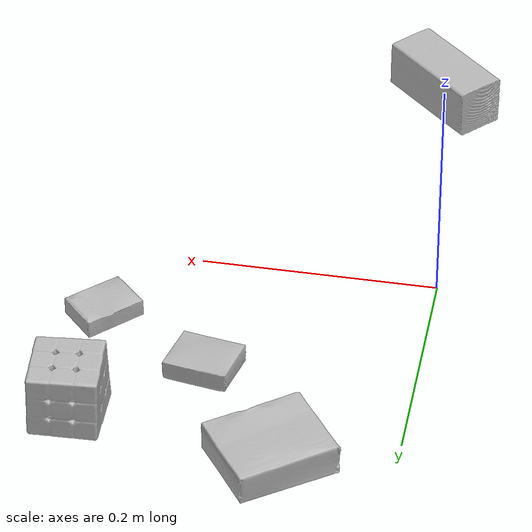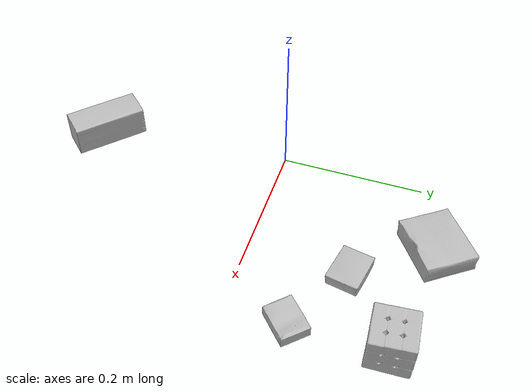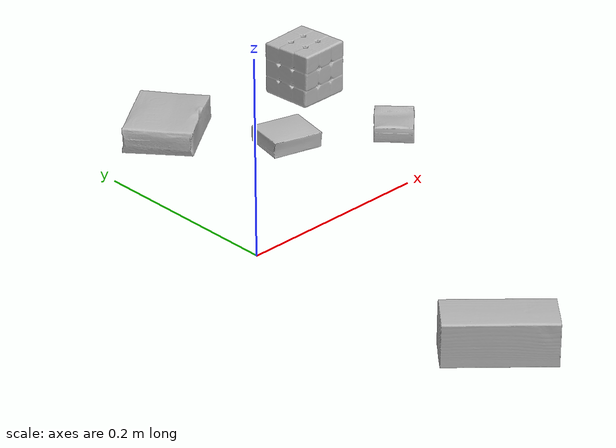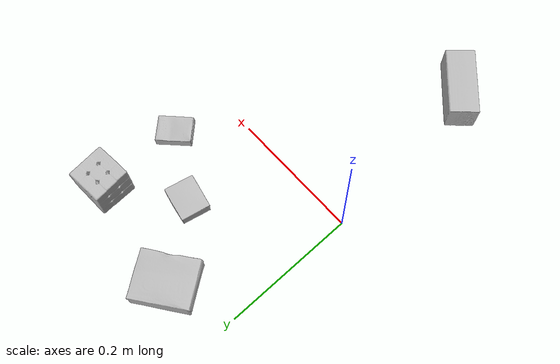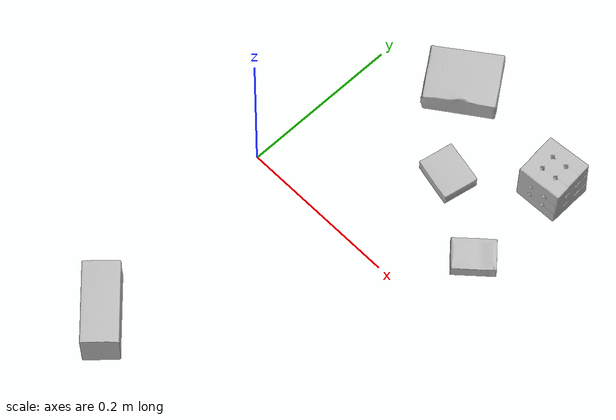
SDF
<sdf version="1.4">
  <world name="default">
    <light name="light1" type="point">
      <pose>0 0 1 0 0 0</pose>
      <diffuse>3 3 3 1</diffuse>
      <specular>3 3 3 1</specular>
    </light>
    <light name="light2" type="point">
      <pose>0 0.5 2 0 0 0</pose>
      <diffuse>1 1 1 1</diffuse>
      <specular>1 1 1 1</specular>
    </light>
    <light name="light3" type="point">
      <pose>0 0.5 2 0 0 0</pose>
      <diffuse>3 3 3 1</diffuse>
      <specular>3 3 3 1</specular>
    </light>
    <scene>
      <ambient>0.7 0.7 0.7</ambient>
    </scene>
    <model name="box1">
      <link name="link_box1">
        <collision name="default">
          <geometry>
            <mesh>
              <uri>model://rubiks_cube/collision_meshes/collision.obj</uri>
              <scale>1.0 1.0 1.0</scale>
            </mesh>
          </geometry>
          <surface>
            <friction>
              <ode>
                <mu>0.5</mu>
                <mu2>0.5</mu2>
              </ode>
            </friction>
          <contact>
        <ode>
            <max_vel>0</max_vel>
            <min_depth>0.0001</min_depth>
            <kp>1e8</kp>
        </ode>
    </contact></surface>
        </collision>
        <visual name="default">
          <geometry>
            <mesh>
              <uri>model://rubiks_cube/visual_meshes/visual.dae</uri>
              <scale>1.0 1.0 1.0</scale>
            </mesh>
          </geometry>
        </visual>
        <inertial>
          <mass>0.16542086005210876</mass>
          <pose>2.6721041649580002e-05 5.256967051536776e-05 -7.264316536748083e-06 -0.054673137900176624 -0.09813866632394339 -0.03445580911338559</pose>
          <inertia>
            <ixx>9.140613e-05</ixx>
            <iyy>9.097988e-05</iyy>
            <izz>9.216359e-05</izz>
            <ixy>0</ixy>
            <ixz>0</ixz>
            <iyz>0</iyz>
          </inertia>
        </inertial>
      </link>
      <pose>0.2661793529987335 0.21118472516536713 0.028678985312581062 -1.5626916461300923e-06 3.6947098518503637e-07 1.645792349169931</pose>
    </model>
    <model name="box2">
      <link name="link_box2">
        <collision name="default">
          <geometry>
            <mesh>
              <uri>model://cracker_box/collision_meshes/collision.obj</uri>
              <scale>0.25 0.25 0.25</scale>
            </mesh>
          </geometry>
          <surface>
            <friction>
              <ode>
                <mu>0.5</mu>
                <mu2>0.5</mu2>
              </ode>
            </friction>
          <contact>
        <ode>
            <max_vel>0</max_vel>
            <min_depth>0.0001</min_depth>
            <kp>1e8</kp>
        </ode>
    </contact></surface>
        </collision>
        <visual name="default">
          <geometry>
            <mesh>
              <uri>model://cracker_box/visual_meshes/visual.dae</uri>
              <scale>0.25 0.25 0.25</scale>
            </mesh>
          </geometry>
        </visual>
        <inertial>
          <mass>0.04381135478615761</mass>
          <pose>0.00023660462466068566 6.358561222441494e-05 -0.0004257383698131889 -0.00031620747829542317 -0.011106489600678707 0.002546794302661479</pose>
          <inertia>
            <ixx>6.9647826e-06</ixx>
            <iyy>1.1500225e-05</iyy>
            <izz>1.6411877e-05</izz>
            <ixy>0</ixy>
            <ixz>0</ixz>
            <iyz>0</iyz>
          </inertia>
        </inertial>
      </link>
      <pose>0.2669660151004791 0.08365388959646225 0.009120447561144829 -0.01178788534882315 -0.007367225029599411 -2.3823358075769154</pose>
    </model>
    <model name="box3">
      <link name="link_box3">
        <collision name="default">
          <geometry>
            <mesh>
              <uri>model://gelatin_box/collision_meshes/collision.obj</uri>
              <scale>1.0 1.0 1.0</scale>
            </mesh>
          </geometry>
          <surface>
            <friction>
              <ode>
                <mu>0.5</mu>
                <mu2>0.5</mu2>
              </ode>
            </friction>
          <contact>
        <ode>
            <max_vel>0</max_vel>
            <min_depth>0.0001</min_depth>
            <kp>1e8</kp>
        </ode>
    </contact></surface>
        </collision>
        <visual name="default">
          <geometry>
            <mesh>
              <uri>model://gelatin_box/visual_meshes/visual.dae</uri>
              <scale>1.0 1.0 1.0</scale>
            </mesh>
          </geometry>
        </visual>
        <inertial>
          <mass>0.23367169499397278</mass>
          <pose>0.0004319618456065655 0.00011156871914863586 -0.0003640321083366871 -0.0010503719733775277 -0.004755817758083372 0.016440561333906818</pose>
          <inertia>
            <ixx>0.00016495313</ixx>
            <iyy>0.00011782518</iyy>
            <izz>0.00025109548</izz>
            <ixy>0</ixy>
            <ixz>0</ixz>
            <iyz>0</iyz>
          </inertia>
        </inertial>
      </link>
      <pose>0.09821585565805435 0.23558329045772552 0.015168310143053532 0.005596512388880351 -0.0073034934783815 -0.949136578862021</pose>
    </model>
    <model name="box4">
      <link name="link_box4">
        <collision name="default">
          <geometry>
            <mesh>
              <uri>model://wood_block/collision_meshes/collision.obj</uri>
              <scale>0.5 0.5 0.5</scale>
            </mesh>
          </geometry>
          <surface>
            <friction>
              <ode>
                <mu>0.5</mu>
                <mu2>0.5</mu2>
              </ode>
            </friction>
          <contact>
        <ode>
            <max_vel>0</max_vel>
            <min_depth>0.0001</min_depth>
            <kp>1e8</kp>
        </ode>
    </contact></surface>
        </collision>
        <visual name="default">
          <geometry>
            <mesh>
              <uri>model://wood_block/visual_meshes/visual.dae</uri>
              <scale>0.5 0.5 0.5</scale>
            </mesh>
          </geometry>
        </visual>
        <inertial>
          <mass>0.20833587646484375</mass>
          <pose>-2.9066577553749084e-06 -0.000285404734313488 0.00013204291462898254 -0.05220975529367638 -0.0051926946165042134 -0.0068613779519224715</pose>
          <inertia>
            <ixx>6.9696216e-05</ixx>
            <iyy>0.0002201704</iyy>
            <izz>0.00021934687</izz>
            <ixy>0</ixy>
            <ixz>0</ixz>
            <iyz>0</iyz>
          </inertia>
        </inertial>
      </link>
      <pose>0.030756428837776184 -0.2687658667564392 0.0226292684674263 -0.0052085148355693195 0.0057187786611571844 2.3850022726219926</pose>
    </model>
    <model name="box5">
      <link name="link_box5">
        <collision name="default">
          <geometry>
            <mesh>
              <uri>model://pudding_box/collision_meshes/collision.obj</uri>
              <scale>0.5 0.5 0.5</scale>
            </mesh>
          </geometry>
          <surface>
            <friction>
              <ode>
                <mu>0.5</mu>
                <mu2>0.5</mu2>
              </ode>
            </friction>
          <contact>
        <ode>
            <max_vel>0</max_vel>
            <min_depth>0.0001</min_depth>
            <kp>1e8</kp>
        </ode>
    </contact></surface>
        </collision>
        <visual name="default">
          <geometry>
            <mesh>
              <uri>model://pudding_box/visual_meshes/visual.dae</uri>
              <scale>0.5 0.5 0.5</scale>
            </mesh>
          </geometry>
        </visual>
        <inertial>
          <mass>0.032720133662223816</mass>
          <pose>0.00024474109522998333 0.0004033942532259971 -0.0002594413817860186 0.005213102275410761 -0.0066037963999523224 0.020079827026921356</pose>
          <inertia>
            <ixx>9.2471055e-06</ixx>
            <iyy>6.221519e-06</iyy>
            <izz>1.3655769e-05</izz>
            <ixy>0</ixy>
            <ixz>0</ixz>
            <iyz>0</iyz>
          </inertia>
        </inertial>
      </link>
      <pose>0.1711418628692627 0.1385640799999237 0.009862899780273438 0.022348519067017267 -0.011391700747409347 1.3633768582736288</pose>
    </model>
  <physics type="ode">
      <max_contacts>50</max_contacts>
      <ode>
        <solver>
          <type>quick</type>
          <iters>75</iters>
        </solver>
        <constraints>
          <contact_max_correcting_vel>0</contact_max_correcting_vel>
          <contact_surface_layer>0</contact_surface_layer>
        </constraints>
      </ode>
    </physics></world>
</sdf>
